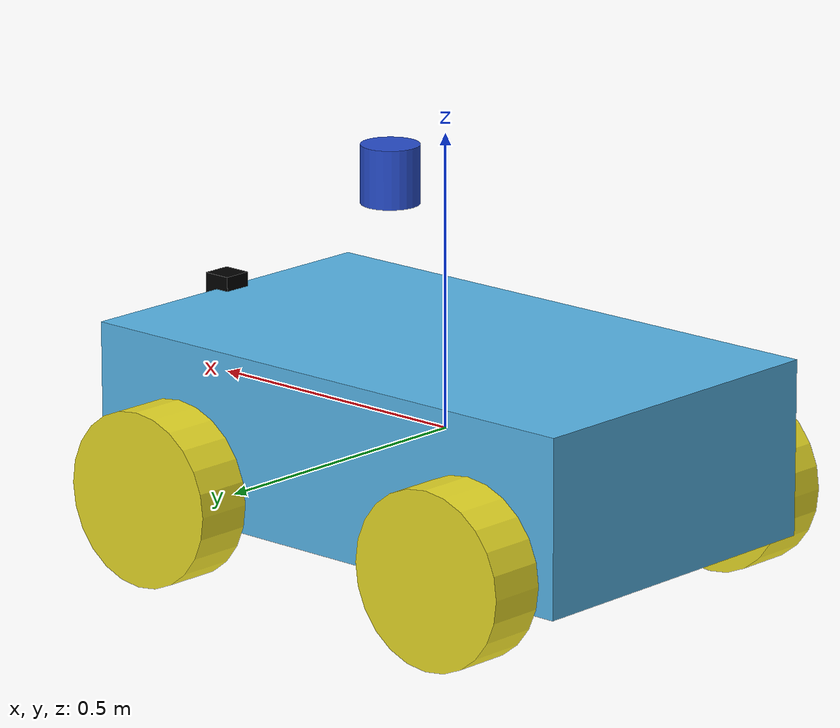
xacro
<?xml version="1.0"?>

<robot name="differential_drive_robot" xmlns:xacro="http://www.ros.org/wiki/xacro">

<!-- Body dimensions -->
<xacro:property name="body_link_x_dim" value="1"/>
<xacro:property name="body_link_y_dim" value="0.6"/>
<xacro:property name="body_link_z_dim" value="0.3"/>

<!-- Wheel dimensions -->
<xacro:property name="wheel_link_radius" value="0.15"/>
<xacro:property name="wheel_link_length" value="0.1"/>
<xacro:property name="wheel_link_z_location" value="-0.1"/>

<!-- Material Density -->
<xacro:property name="body_density" value="2710.0"/>
<xacro:property name="wheel_density" value="2710.0"/>

<!-- Pi Constant -->
<xacro:property name="pi_const" value="3.141592265"/>

<!-- Robot body and wheel mass -->
<xacro:property name="body_mass" value="${body_density*body_link_x_dim*body_link_y_dim*body_link_z_dim}"/>
<xacro:property name="wheel_mass" value="${wheel_density*pi_const*wheel_link_radius*wheel_link_radius*wheel_link_length}"/>

<!-- Moments of inertial of the wheel -->
<xacro:property name="Iz_wheel" value="${0.5*wheel_mass*wheel_link_radius*wheel_link_radius}"/>
<xacro:property name="I_wheel" value="${(1.0/12.0)*wheel_mass*(3*wheel_link_radius*wheel_link_radius+wheel_link_length*wheel_link_length)}"/>

<!-- macros -->

<xacro:macro name="inertia_wheel">
    <inertial>
        <origin rpy="0 0 0" xyz="0 0 0"/>
        <mass value="${wheel_mass}"/>
        <inertia ixx="${I_wheel}" ixy="0.0" ixz="0.0" iyy="${I_wheel}" iyz="0" izz="${Iz_wheel}"/>
    </inertial>
</xacro:macro>

<xacro:include filename="$(find mickrobot_description)/urdf/robot.gazebo"/>

<!-- DEFINING LINKS AND JOINTS -->

<link name="dummy">
</link>
<joint name="dummy_joint" type="fixed">
    <parent link="dummy"/>
    <child link="body_link"/>
</joint>

<!-- Body Link of Robot -->

<link name="body_link">
    <visual>
        <geometry>
            <box size="${body_link_x_dim} ${body_link_y_dim} ${body_link_z_dim}" />
        </geometry>
        <origin rpy="0 0 0" xyz="0 0 0"/>
    </visual>

    <collision>
        <geometry>
            <box size="${body_link_x_dim} ${body_link_y_dim} ${body_link_z_dim}" />
        </geometry>
        <origin rpy="0 0 0" xyz="0 0 0"/>
    </collision>

    <inertial>
        <origin rpy="0 0 0" xyz="0 0 0"/>
        <mass value="${body_mass}"/>
        <inertia
        ixx="${(1/12)*body_mass*(body_link_y_dim+body_link_z_dim*body_link_z_dim)}"
        ixy="0"
        ixz="0"
        iyy="${(1/12)*body_mass*(body_link_x_dim*body_link_x_dim+body_link_z_dim*body_link_z_dim)}"
        iyz="0"
        izz="${(1/12)*body_mass*(body_link_y_dim*body_link_y_dim+body_link_x_dim*body_link_x_dim)}"/>
    </inertial>
</link>

<!-- Back Right Wheel of Robot & Joint -->

<joint name="wheel1_joint" type="continuous">
    <parent link="body_link"/>
    <child link="wheel1_link"/>
    <origin xyz="${-body_link_x_dim/2+1.2*wheel_link_radius} ${-body_link_y_dim/2-wheel_link_length/2} ${wheel_link_z_location}" rpy="0 0 0"/>
    <axis xyz="0 1 0"/>
    <limit effort="1000" velocity="1000"/>
    <dynamics damping="1.0" friction="1.0"/>
</joint>

<link name="wheel1_link">
    <visual>
        <origin rpy="1.570795 0 0" xyz="0 0 0"/>
        <geometry>
            <cylinder length="${wheel_link_length}" radius="${wheel_link_radius}"/>
        </geometry>
    </visual>

    <collision>
        <origin rpy="1.570795 0 0" xyz="0 0 0"/>
        <geometry>
            <cylinder length="${wheel_link_length}" radius="${wheel_link_radius}"/>
        </geometry>
    </collision>

    <xacro:inertia_wheel />
</link>

<!-- Back Left Wheel of Robot & Joint -->

<joint name="wheel2_joint" type="continuous">
    <parent link="body_link"/>
    <child link="wheel2_link"/>
    <origin xyz="${-body_link_x_dim/2+1.2*wheel_link_radius} ${body_link_y_dim/2+wheel_link_length/2} ${wheel_link_z_location}" rpy="0 0 0"/>
    <axis xyz="0 1 0"/>
    <limit effort="1000" velocity="1000"/>
    <dynamics damping="1.0" friction="1.0"/>
</joint>

<link name="wheel2_link">
    <visual>
        <origin rpy="1.570795 0 0" xyz="0 0 0"/>
        <geometry>
            <cylinder length="${wheel_link_length}" radius="${wheel_link_radius}"/>
        </geometry>
    </visual>

    <collision>
        <origin rpy="1.570795 0 0" xyz="0 0 0"/>
        <geometry>
            <cylinder length="${wheel_link_length}" radius="${wheel_link_radius}"/>
        </geometry>
    </collision>

    <xacro:inertia_wheel />
</link>

<!-- Front Right Wheel of Robot & Joint -->

<joint name="wheel3_joint" type="continuous">
    <parent link="body_link"/>
    <child link="wheel3_link"/>
    <origin xyz="${body_link_x_dim/2-1.2*wheel_link_radius} ${-body_link_y_dim/2-wheel_link_length/2} ${wheel_link_z_location}" rpy="0 0 0"/>
    <axis xyz="0 1 0"/>
    <limit effort="1000" velocity="1000"/>
    <dynamics damping="1.0" friction="1.0"/>
</joint>

<link name="wheel3_link">
    <visual>
        <origin rpy="1.570795 0 0" xyz="0 0 0"/>
        <geometry>
            <cylinder length="${wheel_link_length}" radius="${wheel_link_radius}"/>
        </geometry>
    </visual>

    <collision>
        <origin rpy="1.570795 0 0" xyz="0 0 0"/>
        <geometry>
            <cylinder length="${wheel_link_length}" radius="${wheel_link_radius}"/>
        </geometry>
    </collision>

    <xacro:inertia_wheel />
</link>

<!-- Front Left Wheel of Robot & Joint -->

<joint name="wheel4_joint" type="continuous">
    <parent link="body_link"/>
    <child link="wheel4_link"/>
    <origin xyz="${body_link_x_dim/2-1.2*wheel_link_radius} ${body_link_y_dim/2+wheel_link_length/2} ${wheel_link_z_location}" rpy="0 0 0"/>
    <axis xyz="0 1 0"/>
    <limit effort="1000" velocity="1000"/>
    <dynamics damping="1.0" friction="1.0"/>
</joint>

<link name="wheel4_link">
    <visual>
        <origin rpy="1.570795 0 0" xyz="0 0 0"/>
        <geometry>
            <cylinder length="${wheel_link_length}" radius="${wheel_link_radius}"/>
        </geometry>
    </visual>

    <collision>
        <origin rpy="1.570795 0 0" xyz="0 0 0"/>
        <geometry>
            <cylinder length="${wheel_link_length}" radius="${wheel_link_radius}"/>
        </geometry>
    </collision>

    <xacro:inertia_wheel />
</link>

<!-- LiDAR Sensor Link and Joint -->
<link name="lidar_link">
    <visual>
        <origin rpy="0 0 0" xyz="0 0 0.2"/>
        <geometry>
            <cylinder length="0.1" radius="0.05"/>
        </geometry>
    </visual>
    <collision>
        <origin rpy="0 0 0" xyz="0 0 0.2"/>
        <geometry>
            <cylinder length="0.1" radius="0.05"/>
        </geometry>
    </collision>
    <inertial>
        <origin rpy="0 0 0" xyz="0 0 0.2"/>
        <mass value="0.1"/>
        <inertia ixx="0.001" ixy="0.0" ixz="0.0" iyy="0.001" iyz="0.0" izz="0.001"/>
    </inertial>
</link>

<joint name="lidar_joint" type="fixed">
    <parent link="body_link"/>
    <child link="lidar_link"/>
    <origin xyz="0.122 0 0.212" rpy="0 0 0"/>
</joint>

<!-- LiDAR Sensor Plugin -->
<gazebo reference="lidar_link">
    <material>Gazebo/Blue</material>
    <sensor type="ray" name="lidar">
        <pose>0 0 0 0 0 0</pose>
        <visualize>true</visualize>
        <update_rate>10</update_rate>
        <ray>
            <scan>
                <horizontal>
                    <samples>360</samples>
                    <resolution>1</resolution>
                    <min_angle>-3.14159</min_angle>
                    <max_angle>3.14159</max_angle>
                </horizontal>
            </scan>
            <range>
                <min>0.3</min>
                <max>12.0</max>
                <resolution>0.01</resolution>
            </range>
            <noise>
                <type>gaussian</type>
                <mean>0.0</mean>
                <stddev>0.01</stddev>
            </noise>
        </ray>
        <plugin name="gazebo_ros_lidar_controller" filename="libgazebo_ros_ray_sensor.so">
            <ros>
                <namespace>/</namespace>
                <remapping>~/out:=scan</remapping>
            </ros>
            <output_type>sensor_msgs/LaserScan</output_type>
            <frame_name>lidar_link</frame_name>
        </plugin>
    </sensor>
</gazebo>

<!-- Camera Link and Joint -->
<link name="camera_link">
    <visual>
        <origin xyz="0 0 0" rpy="0 0 0"/>
        <geometry>
            <box size="0.05 0.05 0.05"/>
        </geometry>
        <material name="black">
            <color rgba="0 0 0 1"/>
        </material>
    </visual>
    <collision>
        <origin xyz="0 0 0" rpy="0 0 0"/>
        <geometry>
            <box size="0.05 0.05 0.05"/>
        </geometry>
    </collision>
    <inertial>
        <mass value="0.1"/>
        <origin xyz="0 0 0" rpy="0 0 0"/>
        <inertia ixx="0.0001" ixy="0" ixz="0" iyy="0.0001" iyz="0" izz="0.0001"/>
    </inertial>
</link>

<joint name="camera_joint" type="fixed">
    <parent link="body_link"/>
    <child link="camera_link"/>
    <origin xyz="${body_link_x_dim/2} 0 ${body_link_z_dim/2}" rpy="0 0 0"/>
</joint>

<!-- Camera Gazebo Plugin -->
<gazebo reference="camera_link">
    <material>Gazebo/Black</material>
    <sensor type="camera" name="camera">
        <update_rate>30.0</update_rate>
        <camera name="head">
            <horizontal_fov>1.3962634</horizontal_fov>
            <image>
                <width>800</width>
                <height>600</height>
                <format>R8G8B8</format>
            </image>
            <clip>
                <near>0.02</near>
                <far>300</far>
            </clip>
            <noise>
                <type>gaussian</type>
                <mean>0.0</mean>
                <stddev>0.007</stddev>
            </noise>
        </camera>
        <plugin name="camera_controller" filename="libgazebo_ros_camera.so">
            <alwaysOn>true</alwaysOn>
            <updateRate>0.0</updateRate>
            <cameraName>camera</cameraName>
            <imageTopicName>image_raw</imageTopicName>
            <cameraInfoTopicName>camera_info</cameraInfoTopicName>
            <frameName>camera_link</frameName>
            <hackBaseline>0.07</hackBaseline>
            <distortionK1>0.0</distortionK1>
            <distortionK2>0.0</distortionK2>
            <distortionK3>0.0</distortionK3>
            <distortionT1>0.0</distortionT1>
            <distortionT2>0.0</distortionT2>
        </plugin>
    </sensor>
</gazebo>

</robot>
